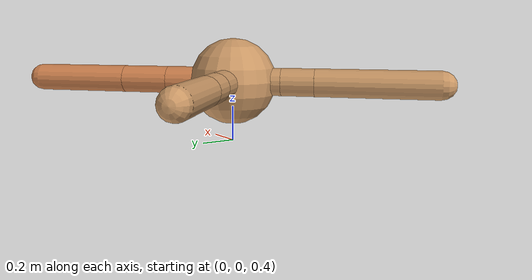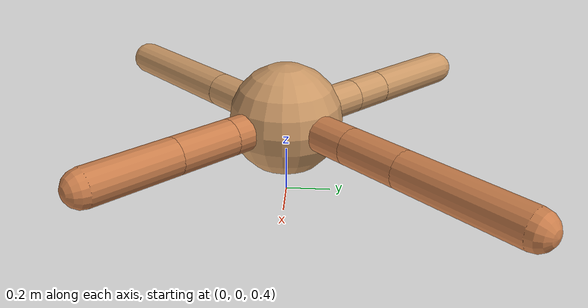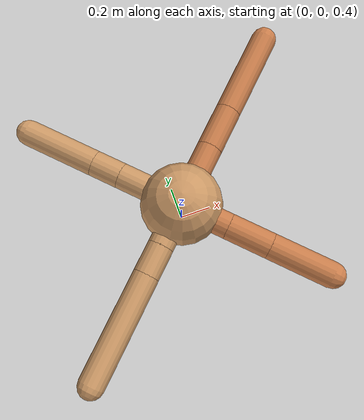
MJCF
<mujoco model="ant">
  <compiler angle="degree" coordinate="local" inertiafromgeom="true" />
  <option integrator="RK4" timestep="0.01" />
  <custom>
    <numeric data="0.0 0.0 0.55 1.0 0.0 0.0 0.0 0.0 1.0 0.0 -1.0 0.0 -1.0 0.0 1.0" name="init_qpos" />
  </custom>
  <default>
    <joint armature="1" damping="1" limited="true" />
    <geom conaffinity="0" condim="3" density="5.0" friction="1.5 0.1 0.1" margin="0.01" rgba="0.8 0.6 0.4 1" />
  </default>
  <worldbody>
    <body name="torso" pos="0 0 0.75">
      <geom name="torso_geom" pos="0 0 0" size="0.25" type="sphere" />

      <body name="front_left_leg" pos="0 0 0">
        <geom fromto="0.0 0.0 0.0 0.27920390905131254 0.27920390905131254 0.0" name="aux_1_geom" size="0.08" type="capsule" rgba=".8 .5 .3 1" />
        <body name="aux_1" pos="0.27920390905131254 0.27920390905131254 0.0">
          <joint axis="0 0 1" name="hip_1" pos="0.0 0.0 0.0" range="-40 40" type="hinge" />
          <geom fromto="0.0 0.0 0.0 0.19348167946020892 0.19348167946020892 0.0" name="left_leg_geom" size="0.08" type="capsule" rgba=".8 .5 .3 1" />
          <body pos="0.19348167946020892 0.19348167946020892 0.0" name="front_left_foot">
            <joint axis="-1 1 0" name="ankle_1" pos="0.0 0.0 0.0" range="30 100" type="hinge" />
            <geom fromto="0.0 0.0 0.0 0.3947814624703466 0.3947814624703466 0.0" name="left_ankle_geom" size="0.08" type="capsule" rgba=".8 .5 .3 1" />
          </body>
        </body>
      </body>
      <body name="front_right_leg" pos="0 0 0">
        <geom fromto="0.0 0.0 0.0 -0.28843156205840986 0.28843156205840986 0.0" name="aux_2_geom" size="0.08" type="capsule" />
        <body name="aux_2" pos="-0.28843156205840986 0.28843156205840986 0.0">
          <joint axis="0 0 1" name="hip_2" pos="0.0 0.0 0.0" range="-40 40" type="hinge" />
          <geom fromto="0.0 0.0 0.0 -0.1278624469962638 0.1278624469962638 0.0" name="right_leg_geom" size="0.08" type="capsule" />
          <body pos="-0.1278624469962638 0.1278624469962638 0.0" name="front_right_foot">
            <joint axis="1 1 0" name="ankle_2" pos="0.0 0.0 0.0" range="-100 -30" type="hinge" />
            <geom fromto="0.0 0.0 0.0 -0.3242151304419821 0.3242151304419821 0.0" name="right_ankle_geom" size="0.08" type="capsule" />
          </body>
        </body>
      </body>
      <body name="left_back_leg" pos="0 0 0">
        <geom fromto="0.0 0.0 0.0 -0.20103045679014198 -0.20103045679014198 0.0" name="aux_3_geom" size="0.08" type="capsule" />
        <body name="aux_3" pos="-0.20103045679014198 -0.20103045679014198 0.0">
          <joint axis="0 0 1" name="hip_3" pos="0.0 0.0 0.0" range="-40 40" type="hinge" />
          <geom fromto="0.0 0.0 0.0 -0.13368923789192919 -0.13368923789192919 0.0" name="back_leg_geom" size="0.08" type="capsule" />
          <body pos="-0.13368923789192919 -0.13368923789192919 0.0" name="left_back_foot">
            <joint axis="-1 1 0" name="ankle_3" pos="0.0 0.0 0.0" range="-100 -30" type="hinge" />
            <geom fromto="0.0 0.0 0.0 -0.47864622365926507 -0.47864622365926507 0.0" name="third_ankle_geom" size="0.08" type="capsule" />
          </body>
        </body>
      </body>
      <body name="right_back_leg" pos="0 0 0">
        <geom fromto="0.0 0.0 0.0 0.21900487636571359 -0.21900487636571359 0.0" name="aux_4_geom" size="0.08" type="capsule" rgba=".8 .5 .3 1" />
        <body name="aux_4" pos="0.21900487636571359 -0.21900487636571359 0.0">
          <joint axis="0 0 1" name="hip_4" pos="0.0 0.0 0.0" range="-40 40" type="hinge" />
          <geom fromto="0.0 0.0 0.0 0.19087775751309818 -0.19087775751309818 0.0" name="rightback_leg_geom" size="0.08" type="capsule" rgba=".8 .5 .3 1" />
          <body pos="0.19087775751309818 -0.19087775751309818 0.0" name="right_back_foot">
            <joint axis="1 1 0" name="ankle_4" pos="0.0 0.0 0.0" range="30 100" type="hinge" />
            <geom fromto="0.0 0.0 0.0 0.2768856867202203 -0.2768856867202203 0.0" name="fourth_ankle_geom" size="0.08" type="capsule" rgba=".8 .5 .3 1" />
          </body>
        </body>
      </body>
    </body>
  </worldbody>
  <actuator>
    <motor ctrllimited="true" ctrlrange="-1.0 1.0" joint="hip_4" gear="150" />
    <motor ctrllimited="true" ctrlrange="-1.0 1.0" joint="ankle_4" gear="150" />
    <motor ctrllimited="true" ctrlrange="-1.0 1.0" joint="hip_1" gear="150" />
    <motor ctrllimited="true" ctrlrange="-1.0 1.0" joint="ankle_1" gear="150" />
    <motor ctrllimited="true" ctrlrange="-1.0 1.0" joint="hip_2" gear="150" />
    <motor ctrllimited="true" ctrlrange="-1.0 1.0" joint="ankle_2" gear="150" />
    <motor ctrllimited="true" ctrlrange="-1.0 1.0" joint="hip_3" gear="150" />
    <motor ctrllimited="true" ctrlrange="-1.0 1.0" joint="ankle_3" gear="150" />
  </actuator>
</mujoco>
